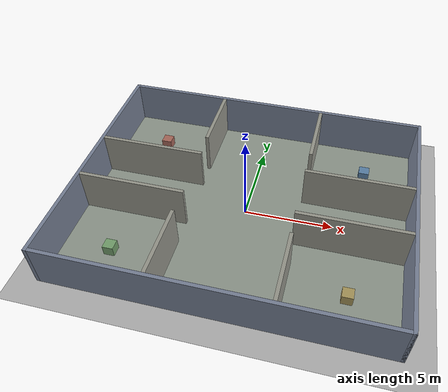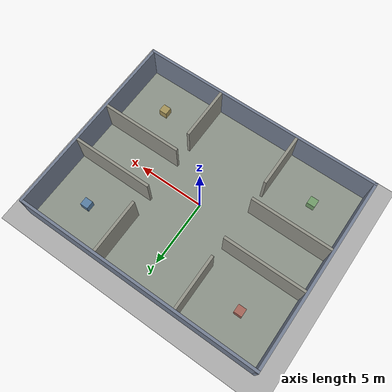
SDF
<?xml version="1.0" ?>
<sdf version='1.8'>
  <world name='simple_rooms'>

    <physics name='4ms' type='ignored'>
      <max_step_size>0.004</max_step_size>
      <real_time_factor>1</real_time_factor>
    </physics>

    <plugin filename="ignition-gazebo-physics-system"
            name="ignition::gazebo::systems::Physics"/>
    <plugin filename="ignition-gazebo-user-commands-system"
            name="ignition::gazebo::systems::UserCommands"/>
    <plugin filename="ignition-gazebo-scene-broadcaster-system"
            name="ignition::gazebo::systems::SceneBroadcaster"/>
    <plugin filename="ignition-gazebo-sensors-system"
            name="ignition::gazebo::systems::Sensors">
      <render_engine>ogre2</render_engine>
    </plugin>
    <plugin filename="ignition-gazebo-contact-system"
            name="ignition::gazebo::systems::Contact"/>
    <plugin filename="ignition-gazebo-imu-system"
            name="ignition::gazebo::systems::Imu"/>

    <light name='sun' type='directional'>
      <pose>0 0 12 0 0 0</pose>
      <cast_shadows>true</cast_shadows>
      <intensity>1.0</intensity>
      <direction>-0.35 0.15 -0.92</direction>
      <diffuse>0.9 0.88 0.82 1</diffuse>
      <specular>0.15 0.15 0.15 1</specular>
    </light>

    <light name='ceiling_center' type='point'>
      <pose>0 0 3.2 0 0 0</pose>
      <diffuse>0.9 0.9 0.86 1</diffuse>
      <specular>0.1 0.1 0.1 1</specular>
      <attenuation>
        <range>18</range>
        <linear>0.08</linear>
      </attenuation>
    </light>

    <!-- Ground plane -->
    <model name='ground_plane'>
      <static>true</static>
      <link name='link'>
        <collision name='collision'>
          <geometry>
            <plane>
              <normal>0 0 1</normal>
              <size>100 100</size>
            </plane>
          </geometry>
        </collision>
        <visual name='visual'>
          <geometry>
            <plane>
              <normal>0 0 1</normal>
              <size>100 100</size>
            </plane>
          </geometry>
          <material>
            <ambient>0.68 0.68 0.68 1</ambient>
            <diffuse>0.68 0.68 0.68 1</diffuse>
          </material>
        </visual>
      </link>
    </model>

    <!-- Floor pad: 18m x 14m interior footprint. -->
    <model name='floor'>
      <static>true</static>
      <pose>0 0 0.003 0 0 0</pose>
      <link name='link'>
        <collision name='collision'>
          <geometry><box><size>18.0 14.0 0.004</size></box></geometry>
        </collision>
        <visual name='visual'>
          <geometry><box><size>18.0 14.0 0.004</size></box></geometry>
          <material>
            <ambient>0.55 0.58 0.54 1</ambient>
            <diffuse>0.55 0.58 0.54 1</diffuse>
          </material>
        </visual>
      </link>
    </model>

    <!-- Outer walls, interior bounds x=[-9,9], y=[-7,7]. -->
    <model name='wall_north'><static>true</static><pose>0 7.1 1.25 0 0 0</pose><link name='link'>
      <collision name='collision'><geometry><box><size>18.4 0.2 2.5</size></box></geometry></collision>
      <visual name='visual'><geometry><box><size>18.4 0.2 2.5</size></box></geometry>
        <material><ambient>0.46 0.50 0.58 1</ambient><diffuse>0.46 0.50 0.58 1</diffuse></material></visual>
    </link></model>

    <model name='wall_south'><static>true</static><pose>0 -7.1 1.25 0 0 0</pose><link name='link'>
      <collision name='collision'><geometry><box><size>18.4 0.2 2.5</size></box></geometry></collision>
      <visual name='visual'><geometry><box><size>18.4 0.2 2.5</size></box></geometry>
        <material><ambient>0.46 0.50 0.58 1</ambient><diffuse>0.46 0.50 0.58 1</diffuse></material></visual>
    </link></model>

    <model name='wall_east'><static>true</static><pose>9.1 0 1.25 0 0 0</pose><link name='link'>
      <collision name='collision'><geometry><box><size>0.2 14.4 2.5</size></box></geometry></collision>
      <visual name='visual'><geometry><box><size>0.2 14.4 2.5</size></box></geometry>
        <material><ambient>0.46 0.50 0.58 1</ambient><diffuse>0.46 0.50 0.58 1</diffuse></material></visual>
    </link></model>

    <model name='wall_west'><static>true</static><pose>-9.1 0 1.25 0 0 0</pose><link name='link'>
      <collision name='collision'><geometry><box><size>0.2 14.4 2.5</size></box></geometry></collision>
      <visual name='visual'><geometry><box><size>0.2 14.4 2.5</size></box></geometry>
        <material><ambient>0.46 0.50 0.58 1</ambient><diffuse>0.46 0.50 0.58 1</diffuse></material></visual>
    </link></model>

    <!-- Main vertical partitions: four rooms around a 3m-wide central hall. -->
    <model name='partition_west_north'><static>true</static><pose>-3.1 5.0 1.25 0 0 0</pose><link name='link'>
      <collision name='collision'><geometry><box><size>0.2 4.0 2.5</size></box></geometry></collision>
      <visual name='visual'><geometry><box><size>0.2 4.0 2.5</size></box></geometry>
        <material><ambient>0.58 0.58 0.54 1</ambient><diffuse>0.58 0.58 0.54 1</diffuse></material></visual>
    </link></model>

    <model name='partition_west_south'><static>true</static><pose>-3.1 -5.0 1.25 0 0 0</pose><link name='link'>
      <collision name='collision'><geometry><box><size>0.2 4.0 2.5</size></box></geometry></collision>
      <visual name='visual'><geometry><box><size>0.2 4.0 2.5</size></box></geometry>
        <material><ambient>0.58 0.58 0.54 1</ambient><diffuse>0.58 0.58 0.54 1</diffuse></material></visual>
    </link></model>

    <model name='partition_east_north'><static>true</static><pose>3.1 5.0 1.25 0 0 0</pose><link name='link'>
      <collision name='collision'><geometry><box><size>0.2 4.0 2.5</size></box></geometry></collision>
      <visual name='visual'><geometry><box><size>0.2 4.0 2.5</size></box></geometry>
        <material><ambient>0.58 0.58 0.54 1</ambient><diffuse>0.58 0.58 0.54 1</diffuse></material></visual>
    </link></model>

    <model name='partition_east_south'><static>true</static><pose>3.1 -5.0 1.25 0 0 0</pose><link name='link'>
      <collision name='collision'><geometry><box><size>0.2 4.0 2.5</size></box></geometry></collision>
      <visual name='visual'><geometry><box><size>0.2 4.0 2.5</size></box></geometry>
        <material><ambient>0.58 0.58 0.54 1</ambient><diffuse>0.58 0.58 0.54 1</diffuse></material></visual>
    </link></model>

    <!-- Horizontal partitions with wide doorway gaps into the central hall. -->
    <model name='partition_north_west'><static>true</static><pose>-6.0 1.6 1.25 0 0 0</pose><link name='link'>
      <collision name='collision'><geometry><box><size>6.0 0.2 2.5</size></box></geometry></collision>
      <visual name='visual'><geometry><box><size>6.0 0.2 2.5</size></box></geometry>
        <material><ambient>0.58 0.58 0.54 1</ambient><diffuse>0.58 0.58 0.54 1</diffuse></material></visual>
    </link></model>

    <model name='partition_north_east'><static>true</static><pose>6.0 1.6 1.25 0 0 0</pose><link name='link'>
      <collision name='collision'><geometry><box><size>6.0 0.2 2.5</size></box></geometry></collision>
      <visual name='visual'><geometry><box><size>6.0 0.2 2.5</size></box></geometry>
        <material><ambient>0.58 0.58 0.54 1</ambient><diffuse>0.58 0.58 0.54 1</diffuse></material></visual>
    </link></model>

    <model name='partition_south_west'><static>true</static><pose>-6.0 -1.6 1.25 0 0 0</pose><link name='link'>
      <collision name='collision'><geometry><box><size>6.0 0.2 2.5</size></box></geometry></collision>
      <visual name='visual'><geometry><box><size>6.0 0.2 2.5</size></box></geometry>
        <material><ambient>0.58 0.58 0.54 1</ambient><diffuse>0.58 0.58 0.54 1</diffuse></material></visual>
    </link></model>

    <model name='partition_south_east'><static>true</static><pose>6.0 -1.6 1.25 0 0 0</pose><link name='link'>
      <collision name='collision'><geometry><box><size>6.0 0.2 2.5</size></box></geometry></collision>
      <visual name='visual'><geometry><box><size>6.0 0.2 2.5</size></box></geometry>
        <material><ambient>0.58 0.58 0.54 1</ambient><diffuse>0.58 0.58 0.54 1</diffuse></material></visual>
    </link></model>

    <!-- Low landmark blocks against room centers. They are not in doorways
         and leave >2m turning clearance, but add enough structure for SLAM. -->
    <model name='landmark_nw'><static>true</static><pose>-6.3 4.5 0.3 0 0 0</pose><link name='link'>
      <collision name='collision'><geometry><box><size>0.6 0.6 0.6</size></box></geometry></collision>
      <visual name='visual'><geometry><box><size>0.6 0.6 0.6</size></box></geometry>
        <material><ambient>0.65 0.40 0.35 1</ambient><diffuse>0.65 0.40 0.35 1</diffuse></material></visual>
    </link></model>

    <model name='landmark_ne'><static>true</static><pose>6.3 4.5 0.3 0 0 0</pose><link name='link'>
      <collision name='collision'><geometry><box><size>0.6 0.6 0.6</size></box></geometry></collision>
      <visual name='visual'><geometry><box><size>0.6 0.6 0.6</size></box></geometry>
        <material><ambient>0.35 0.50 0.65 1</ambient><diffuse>0.35 0.50 0.65 1</diffuse></material></visual>
    </link></model>

    <model name='landmark_sw'><static>true</static><pose>-6.3 -4.5 0.3 0 0 0</pose><link name='link'>
      <collision name='collision'><geometry><box><size>0.6 0.6 0.6</size></box></geometry></collision>
      <visual name='visual'><geometry><box><size>0.6 0.6 0.6</size></box></geometry>
        <material><ambient>0.45 0.62 0.42 1</ambient><diffuse>0.45 0.62 0.42 1</diffuse></material></visual>
    </link></model>

    <model name='landmark_se'><static>true</static><pose>6.3 -4.5 0.3 0 0 0</pose><link name='link'>
      <collision name='collision'><geometry><box><size>0.6 0.6 0.6</size></box></geometry></collision>
      <visual name='visual'><geometry><box><size>0.6 0.6 0.6</size></box></geometry>
        <material><ambient>0.65 0.58 0.35 1</ambient><diffuse>0.65 0.58 0.35 1</diffuse></material></visual>
    </link></model>

    <!-- Overview camera -->
    <model name='world_monitor_cam'>
      <static>true</static>
      <pose>0 0 13 0 1.5708 0</pose>
      <link name='link'>
        <sensor name='monitor_camera' type='camera'>
          <always_on>true</always_on>
          <update_rate>10</update_rate>
          <topic>world_monitor/image_raw</topic>
          <camera>
            <horizontal_fov>1.3</horizontal_fov>
            <image><width>960</width><height>540</height><format>R8G8B8</format></image>
            <clip><near>0.05</near><far>30.0</far></clip>
          </camera>
        </sensor>
      </link>
    </model>

  </world>
</sdf>
